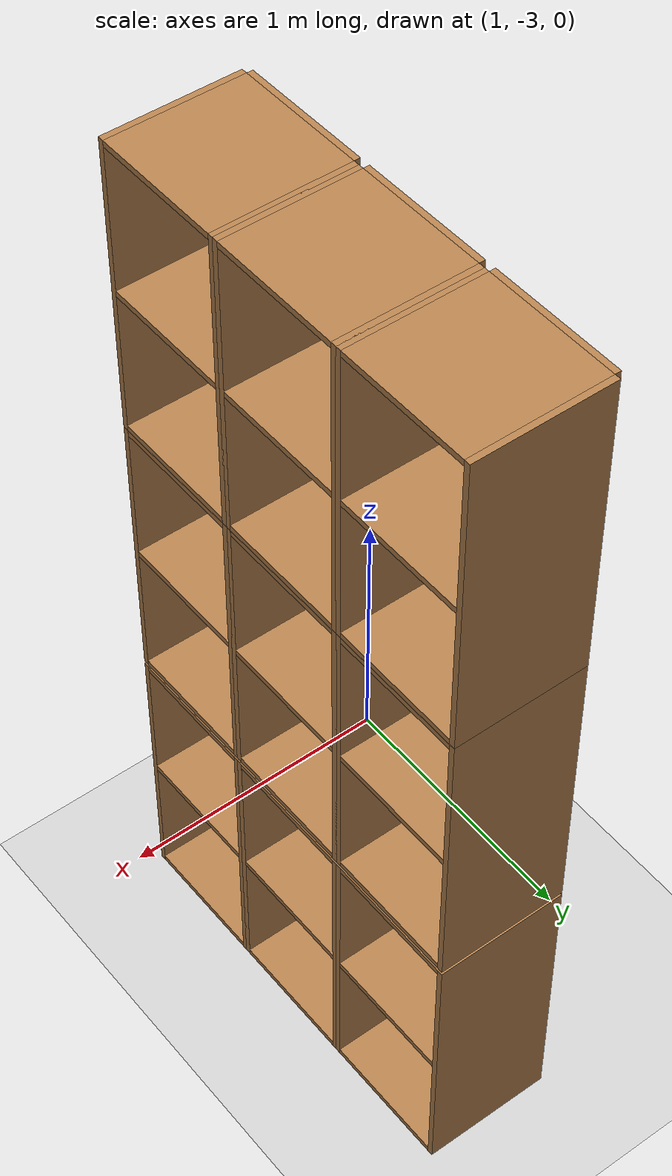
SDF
<sdf version="1.6">
 <world name="default">
  <model name="ground_plane">
   <static>1</static>
   <link name="link">
    <collision name="collision">
     <geometry><plane><normal>0 0 1</normal><size>100 100</size></plane></geometry>
     <surface>
      <contact><collide_bitmask>65535</collide_bitmask></contact>
      <friction><ode><mu>100</mu><mu2>50</mu2></ode></friction>
     </surface>
    </collision>
    <visual name="visual">
     <cast_shadows>0</cast_shadows>
     <geometry><plane><normal>0 0 1</normal><size>100 100</size></plane></geometry>
     <material>
      <script><uri>file://media/materials/scripts/gazebo.material</uri><name>Gazebo/Grey</name></script>
     </material>
    </visual>
   </link>
  </model>
  <model name="Locker18_clone_4_clone_2_clone_1_clone_clone_clone_3">
   <model name="Locker18">
    <model name="Locker3">
     <model name="cabinet">
      <static>1</static>
      <link name="cabinet_bottom_plate">
       <inertial>
        <pose>0 0 -1 0 -0 0</pose>
        <inertia><ixx>2.05</ixx><ixy>0</ixy><ixz>0</ixz><iyy>2.05</iyy><iyz>0</iyz><izz>2.05</izz></inertia>
        <mass>25</mass>
       </inertial>
       <collision name="cabinet_bottom_plate_geom">
        <pose>0 0 0.01 0 -0 0</pose>
        <geometry><box><size>0.45 0.45 0.02</size></box></geometry>
       </collision>
       <visual name="cabinet_bottom_plate_geom_visual">
        <pose>0 0 0.01 0 -0 0</pose>
        <geometry><box><size>0.45 0.45 0.02</size></box></geometry>
        <material>
         <script><uri>file://media/materials/scripts/gazebo.material</uri><name>Gazebo/Wood</name></script>
        </material>
       </visual>
       <collision name="cabinet_bottom_plate_geom_cabinet_back_plate">
        <pose>0.235 0 0.51 0 -0 0</pose>
        <geometry><box><size>0.02 0.45 1.02</size></box></geometry>
       </collision>
       <visual name="cabinet_bottom_plate_geom_cabinet_back_plate_visual">
        <pose>0.235 0 0.51 0 -0 0</pose>
        <geometry><box><size>0.02 0.45 1.02</size></box></geometry>
        <material>
         <script><uri>file://media/materials/scripts/gazebo.material</uri><name>Gazebo/Wood</name></script>
        </material>
       </visual>
       <collision name="cabinet_bottom_plate_geom_cabinet_left_plate">
        <pose>0 0.235 0.51 0 -0 0</pose>
        <geometry><box><size>0.45 0.02 1.02</size></box></geometry>
       </collision>
       <visual name="cabinet_bottom_plate_geom_cabinet_left_plate_visual">
        <pose>0 0.235 0.51 0 -0 0</pose>
        <geometry><box><size>0.45 0.02 1.02</size></box></geometry>
        <material>
         <script><uri>file://media/materials/scripts/gazebo.material</uri><name>Gazebo/Wood</name></script>
        </material>
       </visual>
       <collision name="cabinet_bottom_plate_geom_cabinet_middle_plate">
        <pose>0 0 0.51 0 -0 0</pose>
        <geometry><box><size>0.45 0.45 0.02</size></box></geometry>
       </collision>
       <visual name="cabinet_bottom_plate_geom_cabinet_middle_plate_visual">
        <pose>0 0 0.51 0 -0 0</pose>
        <geometry><box><size>0.45 0.45 0.02</size></box></geometry>
        <material>
         <script><uri>file://media/materials/scripts/gazebo.material</uri><name>Gazebo/Wood</name></script>
        </material>
       </visual>
       <collision name="cabinet_bottom_plate_geom_cabinet_right_plate">
        <pose>0 -0.235 0.51 0 -0 0</pose>
        <geometry><box><size>0.45 0.02 1.02</size></box></geometry>
       </collision>
       <visual name="cabinet_bottom_plate_geom_cabinet_right_plate_visual">
        <pose>0 -0.235 0.51 0 -0 0</pose>
        <geometry><box><size>0.45 0.02 1.02</size></box></geometry>
        <material>
         <script><uri>file://media/materials/scripts/gazebo.material</uri><name>Gazebo/Wood</name></script>
        </material>
       </visual>
       <collision name="cabinet_bottom_plate_geom_cabinet_top_plate">
        <pose>0 0 1.01 0 -0 0</pose>
        <geometry><box><size>0.45 0.45 0.02</size></box></geometry>
       </collision>
       <visual name="cabinet_bottom_plate_geom_cabinet_top_plate_visual">
        <pose>0 0 1.01 0 -0 0</pose>
        <geometry><box><size>0.45 0.45 0.02</size></box></geometry>
        <material>
         <script><uri>file://media/materials/scripts/gazebo.material</uri><name>Gazebo/Wood</name></script>
        </material>
       </visual>
      </link>
      <pose>-0.676968 1.45758 0 0 -0 0</pose>
     </model>
     <model name="cabinet_clone">
      <static>1</static>
      <link name="cabinet_bottom_plate">
       <inertial>
        <pose>0 0 -1 0 -0 0</pose>
        <inertia><ixx>2.05</ixx><ixy>0</ixy><ixz>0</ixz><iyy>2.05</iyy><iyz>0</iyz><izz>2.05</izz></inertia>
        <mass>25</mass>
       </inertial>
       <collision name="cabinet_bottom_plate_geom">
        <pose>0 0 0.01 0 -0 0</pose>
        <geometry><box><size>0.45 0.45 0.02</size></box></geometry>
       </collision>
       <visual name="cabinet_bottom_plate_geom_visual">
        <pose>0 0 0.01 0 -0 0</pose>
        <geometry><box><size>0.45 0.45 0.02</size></box></geometry>
        <material>
         <script><uri>file://media/materials/scripts/gazebo.material</uri><name>Gazebo/Wood</name></script>
        </material>
       </visual>
       <collision name="cabinet_bottom_plate_geom_cabinet_back_plate">
        <pose>0.235 0 0.51 0 -0 0</pose>
        <geometry><box><size>0.02 0.45 1.02</size></box></geometry>
       </collision>
       <visual name="cabinet_bottom_plate_geom_cabinet_back_plate_visual">
        <pose>0.235 0 0.51 0 -0 0</pose>
        <geometry><box><size>0.02 0.45 1.02</size></box></geometry>
        <material>
         <script><uri>file://media/materials/scripts/gazebo.material</uri><name>Gazebo/Wood</name></script>
        </material>
       </visual>
       <collision name="cabinet_bottom_plate_geom_cabinet_left_plate">
        <pose>0 0.235 0.51 0 -0 0</pose>
        <geometry><box><size>0.45 0.02 1.02</size></box></geometry>
       </collision>
       <visual name="cabinet_bottom_plate_geom_cabinet_left_plate_visual">
        <pose>0 0.235 0.51 0 -0 0</pose>
        <geometry><box><size>0.45 0.02 1.02</size></box></geometry>
        <material>
         <script><uri>file://media/materials/scripts/gazebo.material</uri><name>Gazebo/Wood</name></script>
        </material>
       </visual>
       <collision name="cabinet_bottom_plate_geom_cabinet_middle_plate">
        <pose>0 0 0.51 0 -0 0</pose>
        <geometry><box><size>0.45 0.45 0.02</size></box></geometry>
       </collision>
       <visual name="cabinet_bottom_plate_geom_cabinet_middle_plate_visual">
        <pose>0 0 0.51 0 -0 0</pose>
        <geometry><box><size>0.45 0.45 0.02</size></box></geometry>
        <material>
         <script><uri>file://media/materials/scripts/gazebo.material</uri><name>Gazebo/Wood</name></script>
        </material>
       </visual>
       <collision name="cabinet_bottom_plate_geom_cabinet_right_plate">
        <pose>0 -0.235 0.51 0 -0 0</pose>
        <geometry><box><size>0.45 0.02 1.02</size></box></geometry>
       </collision>
       <visual name="cabinet_bottom_plate_geom_cabinet_right_plate_visual">
        <pose>0 -0.235 0.51 0 -0 0</pose>
        <geometry><box><size>0.45 0.02 1.02</size></box></geometry>
        <material>
         <script><uri>file://media/materials/scripts/gazebo.material</uri><name>Gazebo/Wood</name></script>
        </material>
       </visual>
       <collision name="cabinet_bottom_plate_geom_cabinet_top_plate">
        <pose>0 0 1.01 0 -0 0</pose>
        <geometry><box><size>0.45 0.45 0.02</size></box></geometry>
       </collision>
       <visual name="cabinet_bottom_plate_geom_cabinet_top_plate_visual">
        <pose>0 0 1.01 0 -0 0</pose>
        <geometry><box><size>0.45 0.45 0.02</size></box></geometry>
        <material>
         <script><uri>file://media/materials/scripts/gazebo.material</uri><name>Gazebo/Wood</name></script>
        </material>
       </visual>
      </link>
      <pose>-0.676968 0.970971 0 0 -0 0</pose>
     </model>
     <model name="cabinet_clone_0">
      <static>1</static>
      <link name="cabinet_bottom_plate">
       <inertial>
        <pose>0 0 -1 0 -0 0</pose>
        <inertia><ixx>2.05</ixx><ixy>0</ixy><ixz>0</ixz><iyy>2.05</iyy><iyz>0</iyz><izz>2.05</izz></inertia>
        <mass>25</mass>
       </inertial>
       <collision name="cabinet_bottom_plate_geom">
        <pose>0 0 0.01 0 -0 0</pose>
        <geometry><box><size>0.45 0.45 0.02</size></box></geometry>
       </collision>
       <visual name="cabinet_bottom_plate_geom_visual">
        <pose>0 0 0.01 0 -0 0</pose>
        <geometry><box><size>0.45 0.45 0.02</size></box></geometry>
        <material>
         <script><uri>file://media/materials/scripts/gazebo.material</uri><name>Gazebo/Wood</name></script>
        </material>
       </visual>
       <collision name="cabinet_bottom_plate_geom_cabinet_back_plate">
        <pose>0.235 0 0.51 0 -0 0</pose>
        <geometry><box><size>0.02 0.45 1.02</size></box></geometry>
       </collision>
       <visual name="cabinet_bottom_plate_geom_cabinet_back_plate_visual">
        <pose>0.235 0 0.51 0 -0 0</pose>
        <geometry><box><size>0.02 0.45 1.02</size></box></geometry>
        <material>
         <script><uri>file://media/materials/scripts/gazebo.material</uri><name>Gazebo/Wood</name></script>
        </material>
       </visual>
       <collision name="cabinet_bottom_plate_geom_cabinet_left_plate">
        <pose>0 0.235 0.51 0 -0 0</pose>
        <geometry><box><size>0.45 0.02 1.02</size></box></geometry>
       </collision>
       <visual name="cabinet_bottom_plate_geom_cabinet_left_plate_visual">
        <pose>0 0.235 0.51 0 -0 0</pose>
        <geometry><box><size>0.45 0.02 1.02</size></box></geometry>
        <material>
         <script><uri>file://media/materials/scripts/gazebo.material</uri><name>Gazebo/Wood</name></script>
        </material>
       </visual>
       <collision name="cabinet_bottom_plate_geom_cabinet_middle_plate">
        <pose>0 0 0.51 0 -0 0</pose>
        <geometry><box><size>0.45 0.45 0.02</size></box></geometry>
       </collision>
       <visual name="cabinet_bottom_plate_geom_cabinet_middle_plate_visual">
        <pose>0 0 0.51 0 -0 0</pose>
        <geometry><box><size>0.45 0.45 0.02</size></box></geometry>
        <material>
         <script><uri>file://media/materials/scripts/gazebo.material</uri><name>Gazebo/Wood</name></script>
        </material>
       </visual>
       <collision name="cabinet_bottom_plate_geom_cabinet_right_plate">
        <pose>0 -0.235 0.51 0 -0 0</pose>
        <geometry><box><size>0.45 0.02 1.02</size></box></geometry>
       </collision>
       <visual name="cabinet_bottom_plate_geom_cabinet_right_plate_visual">
        <pose>0 -0.235 0.51 0 -0 0</pose>
        <geometry><box><size>0.45 0.02 1.02</size></box></geometry>
        <material>
         <script><uri>file://media/materials/scripts/gazebo.material</uri><name>Gazebo/Wood</name></script>
        </material>
       </visual>
       <collision name="cabinet_bottom_plate_geom_cabinet_top_plate">
        <pose>0 0 1.01 0 -0 0</pose>
        <geometry><box><size>0.45 0.45 0.02</size></box></geometry>
       </collision>
       <visual name="cabinet_bottom_plate_geom_cabinet_top_plate_visual">
        <pose>0 0 1.01 0 -0 0</pose>
        <geometry><box><size>0.45 0.45 0.02</size></box></geometry>
        <material>
         <script><uri>file://media/materials/scripts/gazebo.material</uri><name>Gazebo/Wood</name></script>
        </material>
       </visual>
      </link>
      <pose>-0.676968 0.48391 0 0 -0 0</pose>
     </model>
     <static>0</static>
     <pose>0 3e-06 -1.02763 0 -0 0</pose>
    </model>
    <model name="Locker3_clone">
     <model name="cabinet">
      <static>1</static>
      <link name="cabinet_bottom_plate">
       <inertial>
        <pose>0 0 -1 0 -0 0</pose>
        <inertia><ixx>2.05</ixx><ixy>0</ixy><ixz>0</ixz><iyy>2.05</iyy><iyz>0</iyz><izz>2.05</izz></inertia>
        <mass>25</mass>
       </inertial>
       <collision name="cabinet_bottom_plate_geom">
        <pose>0 0 0.01 0 -0 0</pose>
        <geometry><box><size>0.45 0.45 0.02</size></box></geometry>
       </collision>
       <visual name="cabinet_bottom_plate_geom_visual">
        <pose>0 0 0.01 0 -0 0</pose>
        <geometry><box><size>0.45 0.45 0.02</size></box></geometry>
        <material>
         <script><uri>file://media/materials/scripts/gazebo.material</uri><name>Gazebo/Wood</name></script>
        </material>
       </visual>
       <collision name="cabinet_bottom_plate_geom_cabinet_back_plate">
        <pose>0.235 0 0.51 0 -0 0</pose>
        <geometry><box><size>0.02 0.45 1.02</size></box></geometry>
       </collision>
       <visual name="cabinet_bottom_plate_geom_cabinet_back_plate_visual">
        <pose>0.235 0 0.51 0 -0 0</pose>
        <geometry><box><size>0.02 0.45 1.02</size></box></geometry>
        <material>
         <script><uri>file://media/materials/scripts/gazebo.material</uri><name>Gazebo/Wood</name></script>
        </material>
       </visual>
       <collision name="cabinet_bottom_plate_geom_cabinet_left_plate">
        <pose>0 0.235 0.51 0 -0 0</pose>
        <geometry><box><size>0.45 0.02 1.02</size></box></geometry>
       </collision>
       <visual name="cabinet_bottom_plate_geom_cabinet_left_plate_visual">
        <pose>0 0.235 0.51 0 -0 0</pose>
        <geometry><box><size>0.45 0.02 1.02</size></box></geometry>
        <material>
         <script><uri>file://media/materials/scripts/gazebo.material</uri><name>Gazebo/Wood</name></script>
        </material>
       </visual>
       <collision name="cabinet_bottom_plate_geom_cabinet_middle_plate">
        <pose>0 0 0.51 0 -0 0</pose>
        <geometry><box><size>0.45 0.45 0.02</size></box></geometry>
       </collision>
       <visual name="cabinet_bottom_plate_geom_cabinet_middle_plate_visual">
        <pose>0 0 0.51 0 -0 0</pose>
        <geometry><box><size>0.45 0.45 0.02</size></box></geometry>
        <material>
         <script><uri>file://media/materials/scripts/gazebo.material</uri><name>Gazebo/Wood</name></script>
        </material>
       </visual>
       <collision name="cabinet_bottom_plate_geom_cabinet_right_plate">
        <pose>0 -0.235 0.51 0 -0 0</pose>
        <geometry><box><size>0.45 0.02 1.02</size></box></geometry>
       </collision>
       <visual name="cabinet_bottom_plate_geom_cabinet_right_plate_visual">
        <pose>0 -0.235 0.51 0 -0 0</pose>
        <geometry><box><size>0.45 0.02 1.02</size></box></geometry>
        <material>
         <script><uri>file://media/materials/scripts/gazebo.material</uri><name>Gazebo/Wood</name></script>
        </material>
       </visual>
       <collision name="cabinet_bottom_plate_geom_cabinet_top_plate">
        <pose>0 0 1.01 0 -0 0</pose>
        <geometry><box><size>0.45 0.45 0.02</size></box></geometry>
       </collision>
       <visual name="cabinet_bottom_plate_geom_cabinet_top_plate_visual">
        <pose>0 0 1.01 0 -0 0</pose>
        <geometry><box><size>0.45 0.45 0.02</size></box></geometry>
        <material>
         <script><uri>file://media/materials/scripts/gazebo.material</uri><name>Gazebo/Wood</name></script>
        </material>
       </visual>
      </link>
      <pose>-0.676968 1.45758 0 0 -0 0</pose>
     </model>
     <model name="cabinet_clone">
      <static>1</static>
      <link name="cabinet_bottom_plate">
       <inertial>
        <pose>0 0 -1 0 -0 0</pose>
        <inertia><ixx>2.05</ixx><ixy>0</ixy><ixz>0</ixz><iyy>2.05</iyy><iyz>0</iyz><izz>2.05</izz></inertia>
        <mass>25</mass>
       </inertial>
       <collision name="cabinet_bottom_plate_geom">
        <pose>0 0 0.01 0 -0 0</pose>
        <geometry><box><size>0.45 0.45 0.02</size></box></geometry>
       </collision>
       <visual name="cabinet_bottom_plate_geom_visual">
        <pose>0 0 0.01 0 -0 0</pose>
        <geometry><box><size>0.45 0.45 0.02</size></box></geometry>
        <material>
         <script><uri>file://media/materials/scripts/gazebo.material</uri><name>Gazebo/Wood</name></script>
        </material>
       </visual>
       <collision name="cabinet_bottom_plate_geom_cabinet_back_plate">
        <pose>0.235 0 0.51 0 -0 0</pose>
        <geometry><box><size>0.02 0.45 1.02</size></box></geometry>
       </collision>
       <visual name="cabinet_bottom_plate_geom_cabinet_back_plate_visual">
        <pose>0.235 0 0.51 0 -0 0</pose>
        <geometry><box><size>0.02 0.45 1.02</size></box></geometry>
        <material>
         <script><uri>file://media/materials/scripts/gazebo.material</uri><name>Gazebo/Wood</name></script>
        </material>
       </visual>
       <collision name="cabinet_bottom_plate_geom_cabinet_left_plate">
        <pose>0 0.235 0.51 0 -0 0</pose>
        <geometry><box><size>0.45 0.02 1.02</size></box></geometry>
       </collision>
       <visual name="cabinet_bottom_plate_geom_cabinet_left_plate_visual">
        <pose>0 0.235 0.51 0 -0 0</pose>
        <geometry><box><size>0.45 0.02 1.02</size></box></geometry>
        <material>
         <script><uri>file://media/materials/scripts/gazebo.material</uri><name>Gazebo/Wood</name></script>
        </material>
       </visual>
       <collision name="cabinet_bottom_plate_geom_cabinet_middle_plate">
        <pose>0 0 0.51 0 -0 0</pose>
        <geometry><box><size>0.45 0.45 0.02</size></box></geometry>
       </collision>
       <visual name="cabinet_bottom_plate_geom_cabinet_middle_plate_visual">
        <pose>0 0 0.51 0 -0 0</pose>
        <geometry><box><size>0.45 0.45 0.02</size></box></geometry>
        <material>
         <script><uri>file://media/materials/scripts/gazebo.material</uri><name>Gazebo/Wood</name></script>
        </material>
       </visual>
       <collision name="cabinet_bottom_plate_geom_cabinet_right_plate">
        <pose>0 -0.235 0.51 0 -0 0</pose>
        <geometry><box><size>0.45 0.02 1.02</size></box></geometry>
       </collision>
       <visual name="cabinet_bottom_plate_geom_cabinet_right_plate_visual">
        <pose>0 -0.235 0.51 0 -0 0</pose>
        <geometry><box><size>0.45 0.02 1.02</size></box></geometry>
        <material>
         <script><uri>file://media/materials/scripts/gazebo.material</uri><name>Gazebo/Wood</name></script>
        </material>
       </visual>
       <collision name="cabinet_bottom_plate_geom_cabinet_top_plate">
        <pose>0 0 1.01 0 -0 0</pose>
        <geometry><box><size>0.45 0.45 0.02</size></box></geometry>
       </collision>
       <visual name="cabinet_bottom_plate_geom_cabinet_top_plate_visual">
        <pose>0 0 1.01 0 -0 0</pose>
        <geometry><box><size>0.45 0.45 0.02</size></box></geometry>
        <material>
         <script><uri>file://media/materials/scripts/gazebo.material</uri><name>Gazebo/Wood</name></script>
        </material>
       </visual>
      </link>
      <pose>-0.676968 0.970971 0 0 -0 0</pose>
     </model>
     <model name="cabinet_clone_0">
      <static>1</static>
      <link name="cabinet_bottom_plate">
       <inertial>
        <pose>0 0 -1 0 -0 0</pose>
        <inertia><ixx>2.05</ixx><ixy>0</ixy><ixz>0</ixz><iyy>2.05</iyy><iyz>0</iyz><izz>2.05</izz></inertia>
        <mass>25</mass>
       </inertial>
       <collision name="cabinet_bottom_plate_geom">
        <pose>0 0 0.01 0 -0 0</pose>
        <geometry><box><size>0.45 0.45 0.02</size></box></geometry>
       </collision>
       <visual name="cabinet_bottom_plate_geom_visual">
        <pose>0 0 0.01 0 -0 0</pose>
        <geometry><box><size>0.45 0.45 0.02</size></box></geometry>
        <material>
         <script><uri>file://media/materials/scripts/gazebo.material</uri><name>Gazebo/Wood</name></script>
        </material>
       </visual>
       <collision name="cabinet_bottom_plate_geom_cabinet_back_plate">
        <pose>0.235 0 0.51 0 -0 0</pose>
        <geometry><box><size>0.02 0.45 1.02</size></box></geometry>
       </collision>
       <visual name="cabinet_bottom_plate_geom_cabinet_back_plate_visual">
        <pose>0.235 0 0.51 0 -0 0</pose>
        <geometry><box><size>0.02 0.45 1.02</size></box></geometry>
        <material>
         <script><uri>file://media/materials/scripts/gazebo.material</uri><name>Gazebo/Wood</name></script>
        </material>
       </visual>
       <collision name="cabinet_bottom_plate_geom_cabinet_left_plate">
        <pose>0 0.235 0.51 0 -0 0</pose>
        <geometry><box><size>0.45 0.02 1.02</size></box></geometry>
       </collision>
       <visual name="cabinet_bottom_plate_geom_cabinet_left_plate_visual">
        <pose>0 0.235 0.51 0 -0 0</pose>
        <geometry><box><size>0.45 0.02 1.02</size></box></geometry>
        <material>
         <script><uri>file://media/materials/scripts/gazebo.material</uri><name>Gazebo/Wood</name></script>
        </material>
       </visual>
       <collision name="cabinet_bottom_plate_geom_cabinet_middle_plate">
        <pose>0 0 0.51 0 -0 0</pose>
        <geometry><box><size>0.45 0.45 0.02</size></box></geometry>
       </collision>
       <visual name="cabinet_bottom_plate_geom_cabinet_middle_plate_visual">
        <pose>0 0 0.51 0 -0 0</pose>
        <geometry><box><size>0.45 0.45 0.02</size></box></geometry>
        <material>
         <script><uri>file://media/materials/scripts/gazebo.material</uri><name>Gazebo/Wood</name></script>
        </material>
       </visual>
       <collision name="cabinet_bottom_plate_geom_cabinet_right_plate">
        <pose>0 -0.235 0.51 0 -0 0</pose>
        <geometry><box><size>0.45 0.02 1.02</size></box></geometry>
       </collision>
       <visual name="cabinet_bottom_plate_geom_cabinet_right_plate_visual">
        <pose>0 -0.235 0.51 0 -0 0</pose>
        <geometry><box><size>0.45 0.02 1.02</size></box></geometry>
        <material>
         <script><uri>file://media/materials/scripts/gazebo.material</uri><name>Gazebo/Wood</name></script>
        </material>
       </visual>
       <collision name="cabinet_bottom_plate_geom_cabinet_top_plate">
        <pose>0 0 1.01 0 -0 0</pose>
        <geometry><box><size>0.45 0.45 0.02</size></box></geometry>
       </collision>
       <visual name="cabinet_bottom_plate_geom_cabinet_top_plate_visual">
        <pose>0 0 1.01 0 -0 0</pose>
        <geometry><box><size>0.45 0.45 0.02</size></box></geometry>
        <material>
         <script><uri>file://media/materials/scripts/gazebo.material</uri><name>Gazebo/Wood</name></script>
        </material>
       </visual>
      </link>
      <pose>-0.676968 0.48391 0 0 -0 0</pose>
     </model>
     <static>0</static>
     <pose>0 3e-06 0.003717 0 -0 0</pose>
    </model>
    <model name="Locker3_clone_clone">
     <model name="cabinet">
      <static>1</static>
      <link name="cabinet_bottom_plate">
       <inertial>
        <pose>0 0 -1 0 -0 0</pose>
        <inertia><ixx>2.05</ixx><ixy>0</ixy><ixz>0</ixz><iyy>2.05</iyy><iyz>0</iyz><izz>2.05</izz></inertia>
        <mass>25</mass>
       </inertial>
       <collision name="cabinet_bottom_plate_geom">
        <pose>0 0 0.01 0 -0 0</pose>
        <geometry><box><size>0.45 0.45 0.02</size></box></geometry>
       </collision>
       <visual name="cabinet_bottom_plate_geom_visual">
        <pose>0 0 0.01 0 -0 0</pose>
        <geometry><box><size>0.45 0.45 0.02</size></box></geometry>
        <material>
         <script><uri>file://media/materials/scripts/gazebo.material</uri><name>Gazebo/Wood</name></script>
        </material>
       </visual>
       <collision name="cabinet_bottom_plate_geom_cabinet_back_plate">
        <pose>0.235 0 0.51 0 -0 0</pose>
        <geometry><box><size>0.02 0.45 1.02</size></box></geometry>
       </collision>
       <visual name="cabinet_bottom_plate_geom_cabinet_back_plate_visual">
        <pose>0.235 0 0.51 0 -0 0</pose>
        <geometry><box><size>0.02 0.45 1.02</size></box></geometry>
        <material>
         <script><uri>file://media/materials/scripts/gazebo.material</uri><name>Gazebo/Wood</name></script>
        </material>
       </visual>
       <collision name="cabinet_bottom_plate_geom_cabinet_left_plate">
        <pose>0 0.235 0.51 0 -0 0</pose>
        <geometry><box><size>0.45 0.02 1.02</size></box></geometry>
       </collision>
       <visual name="cabinet_bottom_plate_geom_cabinet_left_plate_visual">
        <pose>0 0.235 0.51 0 -0 0</pose>
        <geometry><box><size>0.45 0.02 1.02</size></box></geometry>
        <material>
         <script><uri>file://media/materials/scripts/gazebo.material</uri><name>Gazebo/Wood</name></script>
        </material>
       </visual>
       <collision name="cabinet_bottom_plate_geom_cabinet_middle_plate">
        <pose>0 0 0.51 0 -0 0</pose>
        <geometry><box><size>0.45 0.45 0.02</size></box></geometry>
       </collision>
       <visual name="cabinet_bottom_plate_geom_cabinet_middle_plate_visual">
        <pose>0 0 0.51 0 -0 0</pose>
        <geometry><box><size>0.45 0.45 0.02</size></box></geometry>
        <material>
         <script><uri>file://media/materials/scripts/gazebo.material</uri><name>Gazebo/Wood</name></script>
        </material>
       </visual>
       <collision name="cabinet_bottom_plate_geom_cabinet_right_plate">
        <pose>0 -0.235 0.51 0 -0 0</pose>
        <geometry><box><size>0.45 0.02 1.02</size></box></geometry>
       </collision>
       <visual name="cabinet_bottom_plate_geom_cabinet_right_plate_visual">
        <pose>0 -0.235 0.51 0 -0 0</pose>
        <geometry><box><size>0.45 0.02 1.02</size></box></geometry>
        <material>
         <script><uri>file://media/materials/scripts/gazebo.material</uri><name>Gazebo/Wood</name></script>
        </material>
       </visual>
       <collision name="cabinet_bottom_plate_geom_cabinet_top_plate">
        <pose>0 0 1.01 0 -0 0</pose>
        <geometry><box><size>0.45 0.45 0.02</size></box></geometry>
       </collision>
       <visual name="cabinet_bottom_plate_geom_cabinet_top_plate_visual">
        <pose>0 0 1.01 0 -0 0</pose>
        <geometry><box><size>0.45 0.45 0.02</size></box></geometry>
        <material>
         <script><uri>file://media/materials/scripts/gazebo.material</uri><name>Gazebo/Wood</name></script>
        </material>
       </visual>
      </link>
      <pose>-0.676968 1.45758 0 0 -0 0</pose>
     </model>
     <model name="cabinet_clone">
      <static>1</static>
      <link name="cabinet_bottom_plate">
       <inertial>
        <pose>0 0 -1 0 -0 0</pose>
        <inertia><ixx>2.05</ixx><ixy>0</ixy><ixz>0</ixz><iyy>2.05</iyy><iyz>0</iyz><izz>2.05</izz></inertia>
        <mass>25</mass>
       </inertial>
       <collision name="cabinet_bottom_plate_geom">
        <pose>0 0 0.01 0 -0 0</pose>
        <geometry><box><size>0.45 0.45 0.02</size></box></geometry>
       </collision>
       <visual name="cabinet_bottom_plate_geom_visual">
        <pose>0 0 0.01 0 -0 0</pose>
        <geometry><box><size>0.45 0.45 0.02</size></box></geometry>
        <material>
         <script><uri>file://media/materials/scripts/gazebo.material</uri><name>Gazebo/Wood</name></script>
        </material>
       </visual>
       <collision name="cabinet_bottom_plate_geom_cabinet_back_plate">
        <pose>0.235 0 0.51 0 -0 0</pose>
        <geometry><box><size>0.02 0.45 1.02</size></box></geometry>
       </collision>
       <visual name="cabinet_bottom_plate_geom_cabinet_back_plate_visual">
        <pose>0.235 0 0.51 0 -0 0</pose>
        <geometry><box><size>0.02 0.45 1.02</size></box></geometry>
        <material>
         <script><uri>file://media/materials/scripts/gazebo.material</uri><name>Gazebo/Wood</name></script>
        </material>
       </visual>
       <collision name="cabinet_bottom_plate_geom_cabinet_left_plate">
        <pose>0 0.235 0.51 0 -0 0</pose>
        <geometry><box><size>0.45 0.02 1.02</size></box></geometry>
       </collision>
       <visual name="cabinet_bottom_plate_geom_cabinet_left_plate_visual">
        <pose>0 0.235 0.51 0 -0 0</pose>
        <geometry><box><size>0.45 0.02 1.02</size></box></geometry>
        <material>
         <script><uri>file://media/materials/scripts/gazebo.material</uri><name>Gazebo/Wood</name></script>
        </material>
       </visual>
       <collision name="cabinet_bottom_plate_geom_cabinet_middle_plate">
        <pose>0 0 0.51 0 -0 0</pose>
        <geometry><box><size>0.45 0.45 0.02</size></box></geometry>
       </collision>
       <visual name="cabinet_bottom_plate_geom_cabinet_middle_plate_visual">
        <pose>0 0 0.51 0 -0 0</pose>
        <geometry><box><size>0.45 0.45 0.02</size></box></geometry>
        <material>
         <script><uri>file://media/materials/scripts/gazebo.material</uri><name>Gazebo/Wood</name></script>
        </material>
       </visual>
       <collision name="cabinet_bottom_plate_geom_cabinet_right_plate">
        <pose>0 -0.235 0.51 0 -0 0</pose>
        <geometry><box><size>0.45 0.02 1.02</size></box></geometry>
       </collision>
       <visual name="cabinet_bottom_plate_geom_cabinet_right_plate_visual">
        <pose>0 -0.235 0.51 0 -0 0</pose>
        <geometry><box><size>0.45 0.02 1.02</size></box></geometry>
        <material>
         <script><uri>file://media/materials/scripts/gazebo.material</uri><name>Gazebo/Wood</name></script>
        </material>
       </visual>
       <collision name="cabinet_bottom_plate_geom_cabinet_top_plate">
        <pose>0 0 1.01 0 -0 0</pose>
        <geometry><box><size>0.45 0.45 0.02</size></box></geometry>
       </collision>
       <visual name="cabinet_bottom_plate_geom_cabinet_top_plate_visual">
        <pose>0 0 1.01 0 -0 0</pose>
        <geometry><box><size>0.45 0.45 0.02</size></box></geometry>
        <material>
         <script><uri>file://media/materials/scripts/gazebo.material</uri><name>Gazebo/Wood</name></script>
        </material>
       </visual>
      </link>
      <pose>-0.676968 0.970971 0 0 -0 0</pose>
     </model>
     <model name="cabinet_clone_0">
      <static>1</static>
      <link name="cabinet_bottom_plate">
       <inertial>
        <pose>0 0 -1 0 -0 0</pose>
        <inertia><ixx>2.05</ixx><ixy>0</ixy><ixz>0</ixz><iyy>2.05</iyy><iyz>0</iyz><izz>2.05</izz></inertia>
        <mass>25</mass>
       </inertial>
       <collision name="cabinet_bottom_plate_geom">
        <pose>0 0 0.01 0 -0 0</pose>
        <geometry><box><size>0.45 0.45 0.02</size></box></geometry>
       </collision>
       <visual name="cabinet_bottom_plate_geom_visual">
        <pose>0 0 0.01 0 -0 0</pose>
        <geometry><box><size>0.45 0.45 0.02</size></box></geometry>
        <material>
         <script><uri>file://media/materials/scripts/gazebo.material</uri><name>Gazebo/Wood</name></script>
        </material>
       </visual>
       <collision name="cabinet_bottom_plate_geom_cabinet_back_plate">
        <pose>0.235 0 0.51 0 -0 0</pose>
        <geometry><box><size>0.02 0.45 1.02</size></box></geometry>
       </collision>
       <visual name="cabinet_bottom_plate_geom_cabinet_back_plate_visual">
        <pose>0.235 0 0.51 0 -0 0</pose>
        <geometry><box><size>0.02 0.45 1.02</size></box></geometry>
        <material>
         <script><uri>file://media/materials/scripts/gazebo.material</uri><name>Gazebo/Wood</name></script>
        </material>
       </visual>
       <collision name="cabinet_bottom_plate_geom_cabinet_left_plate">
        <pose>0 0.235 0.51 0 -0 0</pose>
        <geometry><box><size>0.45 0.02 1.02</size></box></geometry>
       </collision>
       <visual name="cabinet_bottom_plate_geom_cabinet_left_plate_visual">
        <pose>0 0.235 0.51 0 -0 0</pose>
        <geometry><box><size>0.45 0.02 1.02</size></box></geometry>
        <material>
         <script><uri>file://media/materials/scripts/gazebo.material</uri><name>Gazebo/Wood</name></script>
        </material>
       </visual>
       <collision name="cabinet_bottom_plate_geom_cabinet_middle_plate">
        <pose>0 0 0.51 0 -0 0</pose>
        <geometry><box><size>0.45 0.45 0.02</size></box></geometry>
       </collision>
       <visual name="cabinet_bottom_plate_geom_cabinet_middle_plate_visual">
        <pose>0 0 0.51 0 -0 0</pose>
        <geometry><box><size>0.45 0.45 0.02</size></box></geometry>
        <material>
         <script><uri>file://media/materials/scripts/gazebo.material</uri><name>Gazebo/Wood</name></script>
        </material>
       </visual>
       <collision name="cabinet_bottom_plate_geom_cabinet_right_plate">
        <pose>0 -0.235 0.51 0 -0 0</pose>
        <geometry><box><size>0.45 0.02 1.02</size></box></geometry>
       </collision>
       <visual name="cabinet_bottom_plate_geom_cabinet_right_plate_visual">
        <pose>0 -0.235 0.51 0 -0 0</pose>
        <geometry><box><size>0.45 0.02 1.02</size></box></geometry>
        <material>
         <script><uri>file://media/materials/scripts/gazebo.material</uri><name>Gazebo/Wood</name></script>
        </material>
       </visual>
       <collision name="cabinet_bottom_plate_geom_cabinet_top_plate">
        <pose>0 0 1.01 0 -0 0</pose>
        <geometry><box><size>0.45 0.45 0.02</size></box></geometry>
       </collision>
       <visual name="cabinet_bottom_plate_geom_cabinet_top_plate_visual">
        <pose>0 0 1.01 0 -0 0</pose>
        <geometry><box><size>0.45 0.45 0.02</size></box></geometry>
        <material>
         <script><uri>file://media/materials/scripts/gazebo.material</uri><name>Gazebo/Wood</name></script>
        </material>
       </visual>
      </link>
      <pose>-0.676968 0.48391 0 0 -0 0</pose>
     </model>
     <static>0</static>
     <pose>0 3e-06 1.02391 0 -0 0</pose>
    </model>
    <static>0</static>
    <pose>-0 4e-06 4e-06 0 -0 0</pose>
   </model>
   <static>0</static>
   <pose>1.05491 -1.22328 1.08672 0 -0 3.14119</pose>
  </model>
 </world>
</sdf>
